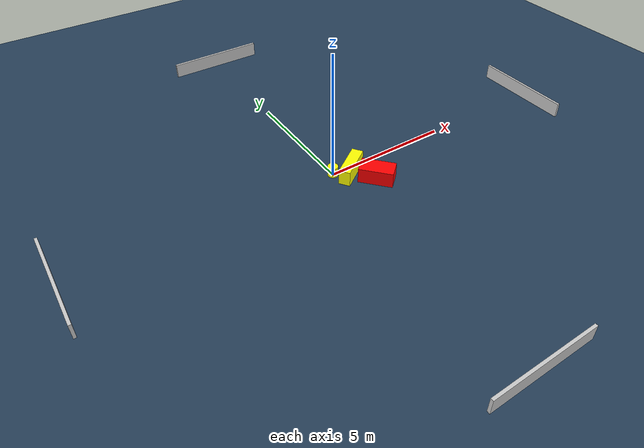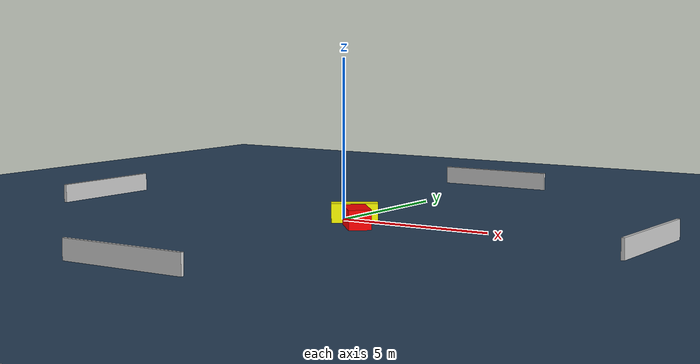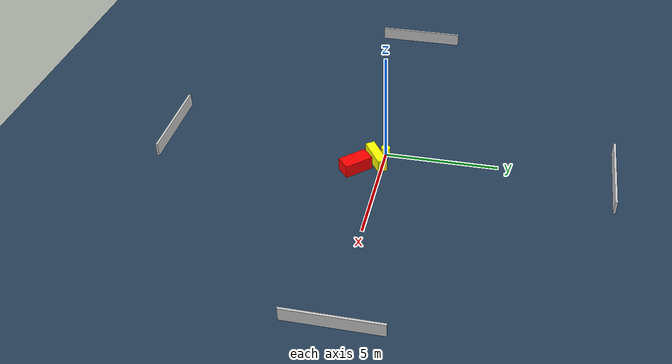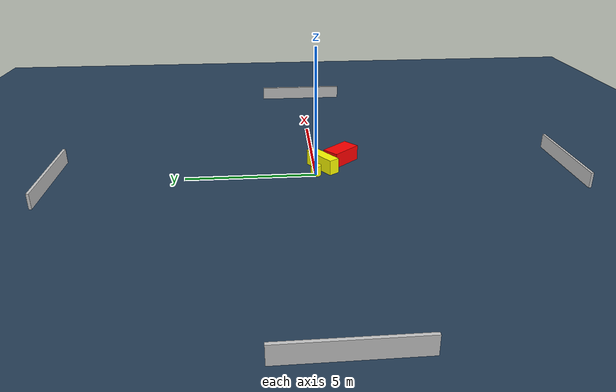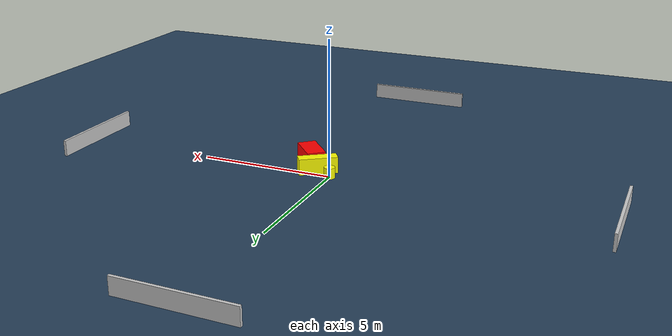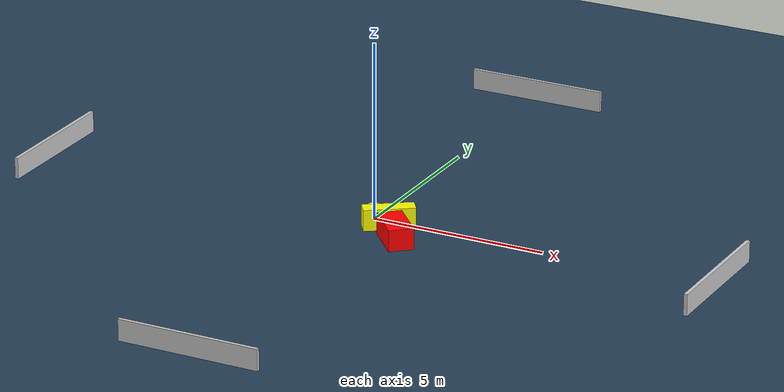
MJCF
<?xml version="1.0" ?>
<mujoco model="generated_environment">
  <option timestep="0.01" integrator="RK4" cone="elliptic"/>
  <default>
    <geom density="1"/>
  </default>
  <asset>
    <texture builtin="gradient" height="3072" name="skybox" rgb1="0.3 0.5 0.7" rgb2="0 0 0" type="skybox" width="512"/>
    <texture builtin="checker" height="300" name="groundplane" rgb1="0.2 0.3 0.4" rgb2="0.1 0.2 0.3" type="2d" width="300"/>
    <material name="groundplane" reflectance="0.2" texrepeat="5 5" texture="groundplane"/>
  </asset>
  <worldbody>
    <light dir="0 0 -1" directional="true" pos="0 0 1.5"/>
    <geom condim="3" friction="0.5 0.005 0.001" material="groundplane" name="floor" pos="0 0 0" size="0 0 0.05" type="plane"/>
    <body name="walls">
      <geom name="wall_1" condim="4" pos="-10.0 0.0 0.3" rgba="0.800000011920929 0.800000011920929 0.800000011920929 1.0" size="0.05 2.0 0.3" type="box"/>
      <geom name="wall_2" condim="4" pos="10.0 0.0 0.3" rgba="0.800000011920929 0.800000011920929 0.800000011920929 1.0" size="0.05 2.0 0.3" type="box"/>
      <geom name="wall_3" condim="4" pos="0.0 -10.0 0.3" rgba="0.800000011920929 0.800000011920929 0.800000011920929 1.0" size="2.0 0.05 0.3" type="box"/>
      <geom name="wall_4" condim="4" pos="0.0 10.0 0.3" rgba="0.800000011920929 0.800000011920929 0.800000011920929 1.0" size="2.0 0.05 0.3" type="box"/>
    </body>
    <body name="robot">
      <joint name="joint_x" type="slide" pos="0 0 0" axis="1 0 0"/>
      <joint name="joint_y" type="slide" pos="0 0 0" axis="0 1 0"/>
      <geom name="robot" type="cylinder" pos="0.0 0.0 0.2" size="0.2 0.2 0.0" mass="5.0" friction="1.0 0.005 0.0001" condim="4" rgba="1.0 1.0 0.0 1.0"/>
    </body>
    <body name="obstacle_1_movable">
      <geom name="obstacle_1_movable" condim="4" pos="0.6001542517056593 -0.31006081537366603 0.3" euler="0 0 124.89272900975462" friction="0.0 0.005 0.001" rgba="1.0 1.0 0.0 1.0" size="0.21576418804605957 0.7125224470457159 0.3" type="box" mass="0.1"/>
      <joint type="free"/>
    </body>
    <body name="obstacle_2_static">
      <geom name="obstacle_2_static" condim="4" pos="1.2116594299240058 -1.109614258711619 0.3" euler="0 0 221.7883130736299" friction="0.0 0.005 0.001" rgba="1.0 0.0 0.0 1.0" size="0.3466737951430171 0.6473361135877687 0.3" type="box"/>
    </body>
  </worldbody>
  <actuator>
    <motor name="actuator_x" joint="joint_x" gear="1" ctrlrange="-1 1"/>
    <motor name="actuator_y" joint="joint_y" gear="1" ctrlrange="-1 1"/>
  </actuator>
</mujoco>
